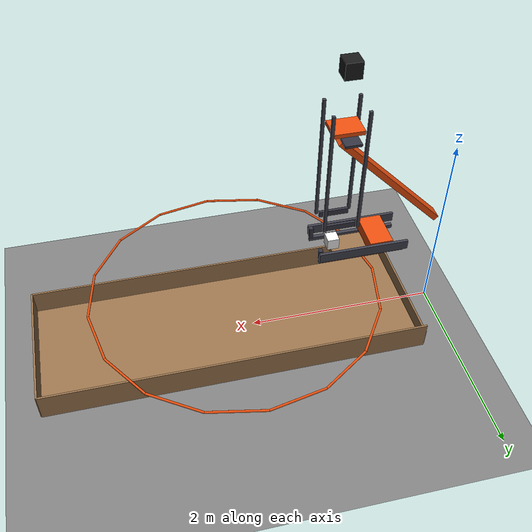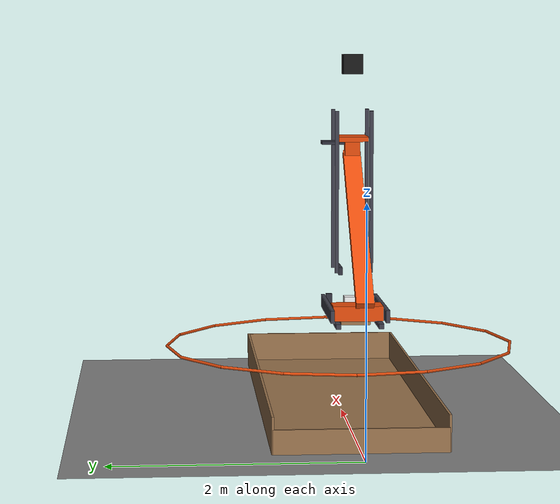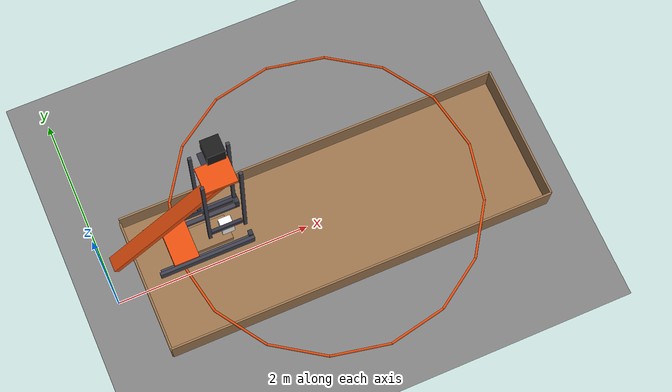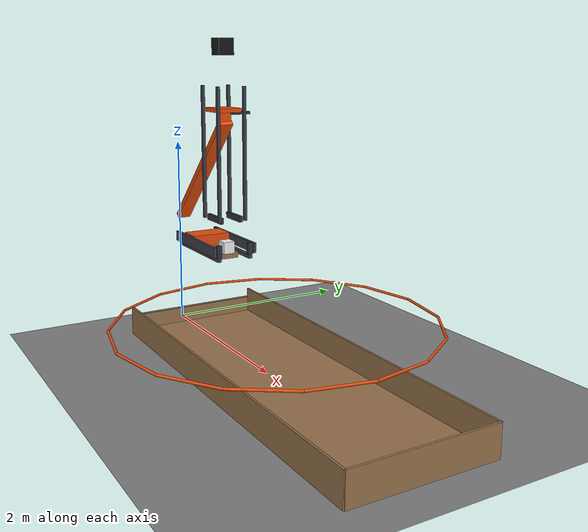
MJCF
<mujoco model="falling_trigger_and_guided_wedge">
  <compiler angle="radian"/>
  <option timestep="0.002"/>
  <worldbody>
    <geom name="floor" type="plane" size="10 10 0.1" friction="0.8 0.005 0.002"/>
    <body name="box">
      <geom name="box_base" type="box" pos="2.3 0 0.02" size="2 0.7 0.02" friction="1 0.02 0.01" solref="0.01 1" rgba="0.6 0.45 0.3 1"/>
      <geom name="box_near_wall" type="box" pos="0.3 0 0.1" size="0.01 0.7 0.1" friction="1 0.02 0.01" solref="0.01 1" rgba="0.6 0.45 0.3 1"/>
      <geom name="box_far_wall" type="box" pos="4.3 0 0.15" size="0.01 0.7 0.15" friction="1 0.02 0.01" solref="0.01 1" rgba="0.6 0.45 0.3 1"/>
      <geom name="box_left_wall" type="box" pos="2.3 0.7 0.15" size="2 0.01 0.15" friction="1 0.02 0.01" solref="0.01 1" rgba="0.6 0.45 0.3 1"/>
      <geom name="box_right_wall" type="box" pos="2.3 -0.7 0.15" size="2 0.01 0.15" friction="1 0.02 0.01" solref="0.01 1" rgba="0.6 0.45 0.3 1"/>
    </body>
    <body name="hoop">
      <geom name="hoop_00" type="capsule" size="0.012" fromto="3.712 0 0.55 3.59691 0.578617 0.55" rgba="0.9 0.3 0.05 1"/>
      <geom name="hoop_01" type="capsule" size="0.012" fromto="3.59691 0.578617 0.55 3.26915 1.06915 0.55" rgba="0.9 0.3 0.05 1"/>
      <geom name="hoop_02" type="capsule" size="0.012" fromto="3.26915 1.06915 0.55 2.77862 1.39691 0.55" rgba="0.9 0.3 0.05 1"/>
      <geom name="hoop_03" type="capsule" size="0.012" fromto="2.77862 1.39691 0.55 2.2 1.512 0.55" rgba="0.9 0.3 0.05 1"/>
      <geom name="hoop_04" type="capsule" size="0.012" fromto="2.2 1.512 0.55 1.62138 1.39691 0.55" rgba="0.9 0.3 0.05 1"/>
      <geom name="hoop_05" type="capsule" size="0.012" fromto="1.62138 1.39691 0.55 1.13085 1.06915 0.55" rgba="0.9 0.3 0.05 1"/>
      <geom name="hoop_06" type="capsule" size="0.012" fromto="1.13085 1.06915 0.55 0.803094 0.578617 0.55" rgba="0.9 0.3 0.05 1"/>
      <geom name="hoop_07" type="capsule" size="0.012" fromto="0.803094 0.578617 0.55 0.688 1.85167e-16 0.55" rgba="0.9 0.3 0.05 1"/>
      <geom name="hoop_08" type="capsule" size="0.012" fromto="0.688 1.85167e-16 0.55 0.803094 -0.578617 0.55" rgba="0.9 0.3 0.05 1"/>
      <geom name="hoop_09" type="capsule" size="0.012" fromto="0.803094 -0.578617 0.55 1.13085 -1.06915 0.55" rgba="0.9 0.3 0.05 1"/>
      <geom name="hoop_10" type="capsule" size="0.012" fromto="1.13085 -1.06915 0.55 1.62138 -1.39691 0.55" rgba="0.9 0.3 0.05 1"/>
      <geom name="hoop_11" type="capsule" size="0.012" fromto="1.62138 -1.39691 0.55 2.2 -1.512 0.55" rgba="0.9 0.3 0.05 1"/>
      <geom name="hoop_12" type="capsule" size="0.012" fromto="2.2 -1.512 0.55 2.77862 -1.39691 0.55" rgba="0.9 0.3 0.05 1"/>
      <geom name="hoop_13" type="capsule" size="0.012" fromto="2.77862 -1.39691 0.55 3.26915 -1.06915 0.55" rgba="0.9 0.3 0.05 1"/>
      <geom name="hoop_14" type="capsule" size="0.012" fromto="3.26915 -1.06915 0.55 3.59691 -0.578617 0.55" rgba="0.9 0.3 0.05 1"/>
      <geom name="hoop_15" type="capsule" size="0.012" fromto="3.59691 -0.578617 0.55 3.712 -3.70333e-16 0.55" rgba="0.9 0.3 0.05 1"/>
    </body>
    <body name="ledge">
      <geom name="ledge" type="box" pos="1 0 0.97" size="0.2 0.12 0.03" friction="0.15 0.005 0.0001" solref="0.01 1" rgba="0.6 0.45 0.3 1"/>
    </body>
    <body name="left track">
      <geom name="left track" type="box" pos="0.92 0.17 0.98" size="0.45 0.02 0.02" friction="0.04 0.005 0.0001" solref="0.01 1" rgba="0.25 0.25 0.3 1"/>
    </body>
    <body name="right track">
      <geom name="right track" type="box" pos="0.92 -0.17 0.98" size="0.45 0.02 0.02" friction="0.04 0.005 0.0001" solref="0.01 1" rgba="0.25 0.25 0.3 1"/>
    </body>
    <body name="left cart guide">
      <geom name="left cart guide" type="box" pos="0.91 0.218 1.06" size="0.46 0.015 0.05" friction="0.01 0.005 0.0001" solref="0.01 1" rgba="0.25 0.25 0.3 1"/>
    </body>
    <body name="right cart guide">
      <geom name="right cart guide" type="box" pos="0.91 -0.218 1.06" size="0.46 0.015 0.05" friction="0.01 0.005 0.0001" solref="0.01 1" rgba="0.25 0.25 0.3 1"/>
    </body>
    <body name="left cart stop">
      <geom name="left cart stop" type="box" pos="1.35 0.17 1.06" size="0.02 0.025 0.06" solref="0.01 1" rgba="0.2 0.2 0.25 1"/>
    </body>
    <body name="right cart stop">
      <geom name="right cart stop" type="box" pos="1.35 -0.17 1.06" size="0.02 0.025 0.06" solref="0.01 1" rgba="0.2 0.2 0.25 1"/>
    </body>
    <body name="cart" pos="0.72 0 1.06">
      <freejoint/>
      <geom name="cart" type="box" pos="0 0 0" size="0.12 0.2 0.06" mass="0.6" friction="0.04 0.001 0.001" solref="0.01 1" rgba="0.9 0.3 0.05 1"/>
    </body>
    <body name="block" pos="1.18 0 1.06">
      <freejoint/>
      <geom name="block" type="box" pos="0 0 0" size="0.06 0.06 0.06" mass="0.1" friction="0.15 0.01 0.005" solref="0.01 1" rgba="0.95 0.95 0.95 1"/>
    </body>
    <body name="left wedge guides1">
      <geom name="left wedge guides1" type="box" pos="0.981 0.139 1.995" size="0.015 0.015 0.655" friction="0.005 0.005 0.0001" solref="0.01 1" rgba="0.25 0.25 0.3 1"/>
    </body>
    <body name="left wedge guides2">
      <geom name="left wedge guides2" type="box" pos="1.319 0.139 1.995" size="0.015 0.015 0.655" friction="0.005 0.005 0.0001" solref="0.01 1" rgba="0.25 0.25 0.3 1"/>
    </body>
    <body name="right wedge guides1">
      <geom name="right wedge guides1" type="box" pos="0.981 -0.139 1.995" size="0.015 0.015 0.655" friction="0.005 0.005 0.0001" solref="0.01 1" rgba="0.25 0.25 0.3 1"/>
    </body>
    <body name="right wedge guides2">
      <geom name="right wedge guides2" type="box" pos="1.319 -0.139 1.995" size="0.015 0.015 0.655" friction="0.005 0.005 0.0001" solref="0.01 1" rgba="0.25 0.25 0.3 1"/>
    </body>
    <body name="left wedge stop">
      <geom name="left wedge stop" type="box" pos="1.15 0.105 1.35" size="0.15 0.015 0.03" solref="0.01 1" rgba="0.2 0.2 0.25 1"/>
    </body>
    <body name="right wedge stop">
      <geom name="right wedge stop" type="box" pos="1.15 -0.105 1.35" size="0.15 0.015 0.03" solref="0.01 1" rgba="0.2 0.2 0.25 1"/>
    </body>
    <body name="release shelf" pos="1.15 0.25 2.3875">
      <joint name="release_hinge" type="hinge" pos="0 0 0" axis="1 0 0" limited="true" range="0 1.74533" stiffness="0.6" springref="-1.0472" damping="0.025"/>
      <geom name="release shelf" type="box" pos="0 -0.09 0" size="0.08 0.09 0.0125" mass="0.03" friction="0.01 0.005 0.0001" solref="0.01 1" rgba="0.2 0.2 0.25 1"/>
    </body>
    <body name="wedge" pos="1.15 0 2.42">
      <freejoint/>
      <geom name="wedge" type="box" pos="0 0 0" size="0.15 0.12 0.02" mass="0.1" friction="0.01 0.001 0.001" solref="0.01 1" rgba="0.9 0.3 0.05 1"/>
      <geom name="wedge neck" type="box" pos="0 0 -0.08" size="0.04 0.06 0.06" mass="0.02" friction="0.01 0.005 0.0001" solref="0.01 1" rgba="0.9 0.3 0.05 1"/>
      <geom name="wedge slope" type="box" pos="-0.5 0 -0.67" size="0.777817 0.07 0.03" euler="0 -0.785398 0" mass="0.25" friction="0.01 0.001 0.001" solref="0.01 1" rgba="0.9 0.3 0.05 1"/>
    </body>
    <body name="trigger" pos="1.15 0 3.02">
      <freejoint/>
      <geom name="trigger" type="box" pos="0 0 0" size="0.08 0.08 0.08" mass="2" friction="0.3 0.01 0.005" solref="0.01 1" rgba="0.1 0.1 0.1 1"/>
    </body>
  </worldbody>
  <keyframe>
    <key name="start" qpos="0.72 0 1.06 1 0 0 0 1.18 0 1.06 1 0 0 0 0 1.15 0 2.42 1 0 0 0 1.15 0 3.02 1 0 0 0" qvel="0 0 0 0 0 0 0 0 0 0 0 0 0 0 0 0 0 0 0 0 0 0 0 0 0"/>
  </keyframe>
</mujoco>
